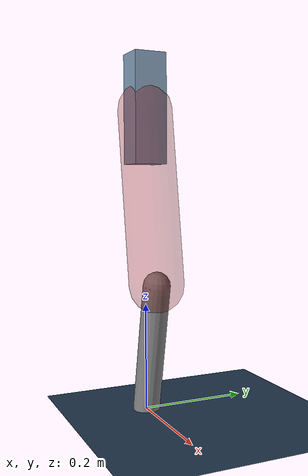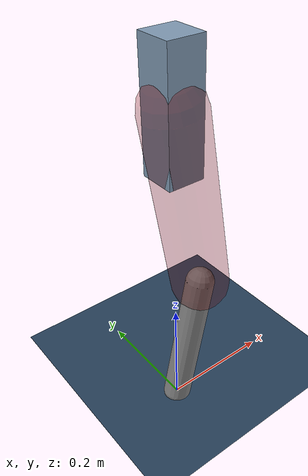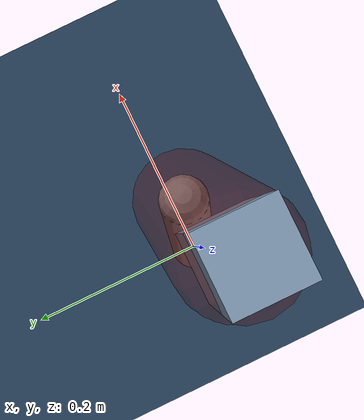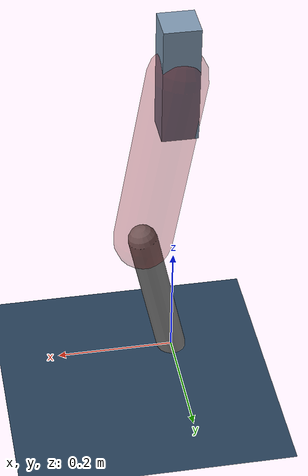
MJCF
<mujoco model="Hopper2D">
	<compiler inertiafromgeom="true" angle="radian" />
	<option timestep="0.001" integrator="implicit" cone="elliptic" solver="Newton" tolerance="1e-10" />

	<default>
		<geom contype="1" conaffinity="1" condim="3" friction="2 0.005 0.0001" solref="0.005 1" />
		<joint limited="true" damping="0.1" />
	</default>

	<asset>
		<texture name="skybox" type="skybox" builtin="gradient" rgb1=".4 .6 .8" rgb2="0 0 0" width="800" height="800" />
		<texture name="grid" type="2d" builtin="checker" rgb1=".1 .2 .3" rgb2=".2 .3 .4" width="300" height="300" mark="edge" markrgb=".2 .3 .4" />
		<material name="ground" texture="grid" texrepeat="1 1" texuniform="true" reflectance="0.1" />
		<material name="leg" rgba="0.5 0.6 0.7 1" />
	</asset>

	<worldbody>

		<geom name="floor" type="plane" size="5 5 0.25" material="ground" />

		<light directional="false" diffuse="0.8 0.8 0.8" specular="0.3 0.3 0.3" pos="0 0 2" dir="0 0 -1" />
		<light mode="targetbodycom" target="base" directional="false" diffuse="0.8 0.8 0.8" specular="0.3 0.3 0.3" pos="0 0 2" dir="0 0 -1" />

		<camera name="fixed" pos="0 -2 1" xyaxes="1 0 0 0 0 1" />
		<camera name="tracking" mode="trackcom" pos="0 -3 1" />

		<body name="root" pos="0 0 0.5613223119232267">
			<joint name="slide_x" type="slide" axis="1 0 0" range="-100 100" />
			<joint name="slide_z" type="slide" axis="0 0 1" range="0 10" />

			<body name="base" pos="0 0 0">
				<geom name="torso" type="box" size="0.03 0.03 0.1" mass="2.073" material="leg" />

				<body name="link1" pos="0 0 0" euler="0 1.406831517241855 0">
					<joint type="hinge" axis="0 -1 0" pos="0 0 0" name="hinge1" limited="true" range="-3.14 3.14" stiffness="0" damping="0.1" />
					<geom name="thigh" type="capsule" fromto="0 0 0 0.3230859558730149 0 0" size="0.05" rgba="0.5 0 0 0.3" mass="1.051740676444442" />

					<body name="link2" pos="0.3230859558730149 0 0" euler="0 0.3780457722886705 0">
						<joint type="hinge" axis="0 -1 0" pos="0 0 0" name="hinge2" limited="true" range="-3.14 3.14" stiffness="0" damping="0.1" />
						<geom name="shank" type="capsule" fromto="0 0 0 0.24823635605021172 0 0" size="0.025" mass="0.4410890848401694" />

					</body>
				</body>
			</body>
		</body>
	</worldbody>

	<actuator>
		<motor name="torque1" joint="hinge1" ctrlrange="-58.47416130474063 58.47416130474063" ctrllimited="true" gear="1" />
		<motor name="torque2" joint="hinge2" ctrlrange="-109.28609236464128 109.28609236464128" ctrllimited="true" gear="1" />
	</actuator>
</mujoco>
